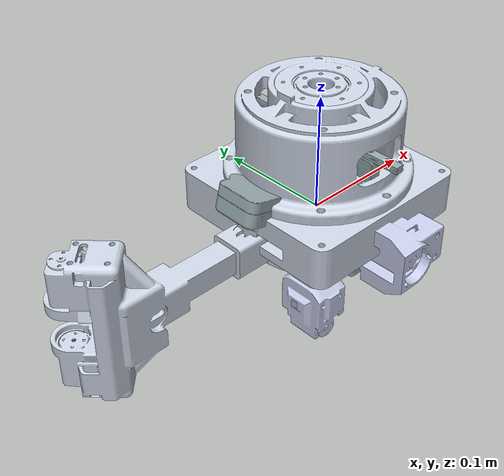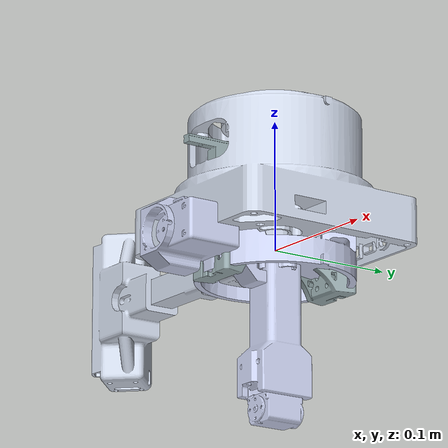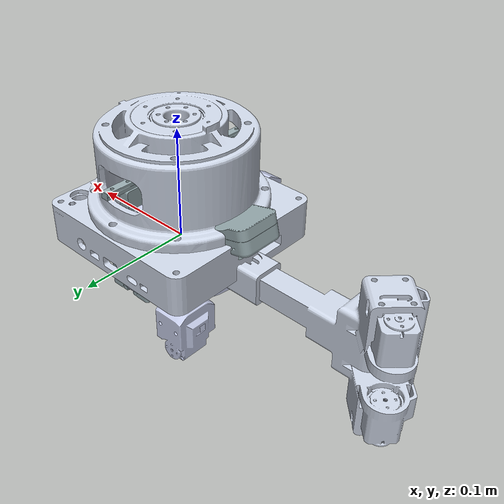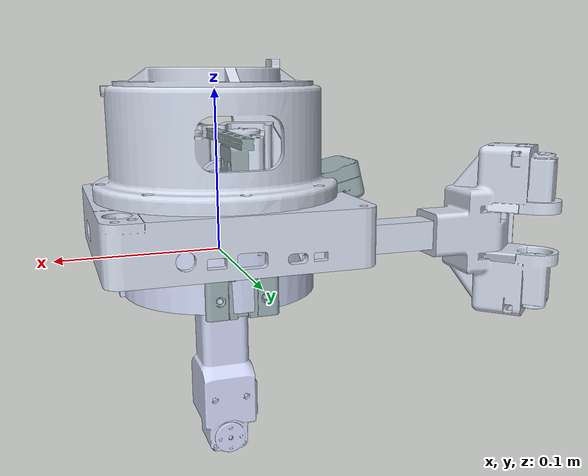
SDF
<?xml version="1.0"?>
<sdf version="1.8">
  <model name="alicia_d_fixed">

    <!-- base_link                                                    -->
    <!-- 当前架构: 由 URDF (Alicia_D_v5_6_gripper_100mm.urdf.xacro)   -->
    <!--          内的 world→base_link fixed joint 锚定到世界          -->
    <link name="base_link">
      <inertial>
        <pose>0.00082623 0.00797844 0.04576751 0 0 0</pose>
        <mass>0.73396142</mass>
        <inertia>
          <ixx>0.001384103</ixx><ixy>0.000056720</ixy><ixz>0.000000514</ixz>
          <iyy>0.001736172</iyy><iyz>-0.000014865</iyz>
          <izz>0.002746677</izz>
        </inertia>
      </inertial>
      <visual name="visual">
        <geometry>
          <mesh>
            <uri>model://alicia_d_descriptions/meshes/Alicia_D_v5_6/gripper_100mm/base_link.STL</uri>
          </mesh>
        </geometry>
        <material>
          <ambient>0.808 0.843 0.906 1</ambient>
          <diffuse>0.808 0.843 0.906 1</diffuse>
        </material>
      </visual>
      <collision name="collision">
        <geometry>
          <mesh>
            <uri>model://alicia_d_descriptions/meshes/Alicia_D_v5_6/gripper_100mm/base_link.STL</uri>
          </mesh>
        </geometry>
      </collision>
    </link>

    <!-- Link1                                                        -->
    <link name="Link1">
      <inertial>
        <pose>-0.00010985 -0.00001290 0.00303813 0 0 0</pose>
        <mass>0.19523345</mass>
        <inertia>
          <ixx>0.000258425</ixx><ixy>0.000000836</ixy><ixz>0.000002551</ixz>
          <iyy>0.000149308</iyy><iyz>-0.000001111</iyz>
          <izz>0.000339717</izz>
        </inertia>
      </inertial>
      <visual name="visual">
        <geometry>
          <mesh>
            <uri>model://alicia_d_descriptions/meshes/Alicia_D_v5_6/gripper_100mm/Link1.STL</uri>
          </mesh>
        </geometry>
        <material>
          <ambient>0.796 0.824 0.937 1</ambient>
          <diffuse>0.796 0.824 0.937 1</diffuse>
        </material>
      </visual>
      <collision name="collision">
        <geometry>
          <mesh>
            <uri>model://alicia_d_descriptions/meshes/Alicia_D_v5_6/gripper_100mm/Link1.STL</uri>
          </mesh>
        </geometry>
      </collision>
    </link>

    <joint name="Joint1" type="revolute">
      <pose relative_to="base_link">0 0 0.1295 0 -0.03978184 0</pose>
      <parent>base_link</parent>
      <child>Link1</child>
      <axis>
        <xyz>-0.03977135 0 0.99920881</xyz>
        <limit>
          <lower>-2.749</lower>
          <upper>2.749</upper>
          <effort>5</effort>
          <velocity>12</velocity>
        </limit>
        <dynamics>
          <damping>0.5</damping>
          <friction>0.1</friction>
        </dynamics>
      </axis>
    </joint>

    <!-- Link2                                                        -->
    <link name="Link2">
      <inertial>
        <pose>0.15058870 0.00100783 0.00056760 0 0 0</pose>
        <mass>0.20703369</mass>
        <inertia>
          <ixx>0.000128136</ixx><ixy>0.000000119</ixy><ixz>0.000001667</ixz>
          <iyy>0.000205708</iyy><iyz>-0.000000350</iyz>
          <izz>0.000122721</izz>
        </inertia>
      </inertial>
      <visual name="visual">
        <geometry>
          <mesh>
            <uri>model://alicia_d_descriptions/meshes/Alicia_D_v5_6/gripper_100mm/Link2.STL</uri>
          </mesh>
        </geometry>
        <material>
          <ambient>0.808 0.843 0.906 1</ambient>
          <diffuse>0.808 0.843 0.906 1</diffuse>
        </material>
      </visual>
      <collision name="collision">
        <geometry>
          <mesh>
            <uri>model://alicia_d_descriptions/meshes/Alicia_D_v5_6/gripper_100mm/Link2.STL</uri>
          </mesh>
        </geometry>
      </collision>
    </link>

    <joint name="Joint2" type="revolute">
      <pose relative_to="Link1">0.00170500 0 0.04283608 1.5707963 -1.5707963 0</pose>
      <parent>Link1</parent>
      <child>Link2</child>
      <axis>
        <xyz>0 0 -1</xyz>
        <limit>
          <lower>-1.57</lower>
          <upper>1.57</upper>
          <effort>5</effort>
          <velocity>12</velocity>
        </limit>
        <dynamics><damping>0.5</damping><friction>0.1</friction></dynamics>
      </axis>
    </joint>

    <!-- Link3                                                        -->
    <link name="Link3">
      <inertial>
        <pose>-0.00248144 -0.05578632 -0.00026972 0 0 0</pose>
        <mass>0.08455756</mass>
        <inertia>
          <ixx>0.0000761918</ixx><ixy>-0.00000226499</ixy><ixz>-0.000000382300</ixz>
          <iyy>0.0000287941</iyy><iyz>-0.00000538445</iyz>
          <izz>0.0000804370</izz>
        </inertia>
      </inertial>
      <visual name="visual">
        <geometry>
          <mesh>
            <uri>model://alicia_d_descriptions/meshes/Alicia_D_v5_6/gripper_100mm/Link3.STL</uri>
          </mesh>
        </geometry>
        <material>
          <ambient>0.792 0.820 0.933 1</ambient>
          <diffuse>0.792 0.820 0.933 1</diffuse>
        </material>
      </visual>
      <collision name="collision">
        <geometry>
          <mesh>
            <uri>model://alicia_d_descriptions/meshes/Alicia_D_v5_6/gripper_100mm/Link3.STL</uri>
          </mesh>
        </geometry>
      </collision>
    </link>

    <joint name="Joint3" type="revolute">
      <pose relative_to="Link2">0.22367130 0.02269161 -0.00005000 0 0 -2.35619449</pose>
      <parent>Link2</parent>
      <child>Link3</child>
      <axis>
        <xyz>0 0 -1</xyz>
        <limit>
          <lower>-0.78</lower>
          <upper>3.14159</upper>
          <effort>5</effort>
          <velocity>12</velocity>
        </limit>
        <dynamics><damping>0.5</damping><friction>0.1</friction></dynamics>
      </axis>
    </joint>

    <!-- Link4                                                        -->
    <link name="Link4">
      <inertial>
        <pose>0.00029837 -0.00060137 0.06597404 0 0 0</pose>
        <mass>0.06536959</mass>
        <inertia>
          <ixx>0.0000703004</ixx><ixy>-0.00000000968</ixy><ixz>-0.000000750131</ixz>
          <iyy>0.0000687470</iyy><iyz>0.0000000445271</iyz>
          <izz>0.0000168226</izz>
        </inertia>
      </inertial>
      <visual name="visual">
        <geometry>
          <mesh>
            <uri>model://alicia_d_descriptions/meshes/Alicia_D_v5_6/gripper_100mm/Link4.STL</uri>
          </mesh>
        </geometry>
        <material>
          <ambient>0.792 0.820 0.933 1</ambient>
          <diffuse>0.792 0.820 0.933 1</diffuse>
        </material>
      </visual>
      <collision name="collision">
        <geometry>
          <mesh>
            <uri>model://alicia_d_descriptions/meshes/Alicia_D_v5_6/gripper_100mm/Link4.STL</uri>
          </mesh>
        </geometry>
      </collision>
    </link>

    <joint name="Joint4" type="revolute">
      <pose relative_to="Link3">0.00211000 -0.09900000 -0.00020000 1.5707963 0 0</pose>
      <parent>Link3</parent>
      <child>Link4</child>
      <axis>
        <xyz>0 0 -1</xyz>
        <limit>
          <lower>-2.7925</lower>
          <upper>2.7925</upper>
          <effort>5</effort>
          <velocity>12</velocity>
        </limit>
        <dynamics><damping>0.5</damping><friction>0.1</friction></dynamics>
      </axis>
    </joint>

    <!-- Link5                                                        -->
    <link name="Link5">
      <inertial>
        <pose>-0.01136842 0.03086875 -0.00087045 0 0 0</pose>
        <mass>0.05076390</mass>
        <inertia>
          <ixx>0.0000187701</ixx><ixy>0.00000201099</ixy><ixz>-0.0000000515226</ixz>
          <iyy>0.0000251021</iyy><iyz>-0.0000000422413</iyz>
          <izz>0.0000172572</izz>
        </inertia>
      </inertial>
      <visual name="visual">
        <geometry>
          <mesh>
            <uri>model://alicia_d_descriptions/meshes/Alicia_D_v5_6/gripper_100mm/Link5.STL</uri>
          </mesh>
        </geometry>
        <material>
          <ambient>0.792 0.820 0.933 1</ambient>
          <diffuse>0.792 0.820 0.933 1</diffuse>
        </material>
      </visual>
      <collision name="collision">
        <geometry>
          <mesh>
            <uri>model://alicia_d_descriptions/meshes/Alicia_D_v5_6/gripper_100mm/Link5.STL</uri>
          </mesh>
        </geometry>
      </collision>
    </link>

    <joint name="Joint5" type="revolute">
      <pose relative_to="Link4">0 -0.00050000 0.12235000 1.5707963 0 0</pose>
      <parent>Link4</parent>
      <child>Link5</child>
      <axis>
        <xyz>0 0 1</xyz>
        <limit>
          <lower>-1.57</lower>
          <upper>1.57</upper>
          <effort>5</effort>
          <velocity>12</velocity>
        </limit>
        <dynamics><damping>0.5</damping><friction>0.1</friction></dynamics>
      </axis>
    </joint>

    <!-- Link6                                                        -->
    <link name="Link6">
      <inertial>
        <pose>-0.02876443 -0.00016362 0.03414807 0 0 0</pose>
        <mass>0.12343629</mass>
        <inertia>
          <ixx>0.0000816840</ixx><ixy>0.0000000106380</ixy><ixz>-0.00000360107</ixz>
          <iyy>0.0000341799</iyy><iyz>0.0000000208540</iyz>
          <izz>0.0000879930</izz>
        </inertia>
      </inertial>
      <visual name="visual">
        <geometry>
          <mesh>
            <uri>model://alicia_d_descriptions/meshes/Alicia_D_v5_6/gripper_100mm/Link6.STL</uri>
          </mesh>
        </geometry>
        <material>
          <ambient>0.592 0.667 0.682 1</ambient>
          <diffuse>0.592 0.667 0.682 1</diffuse>
        </material>
      </visual>
      <collision name="collision">
        <geometry>
          <mesh>
            <uri>model://alicia_d_descriptions/meshes/Alicia_D_v5_6/gripper_100mm/Link6.STL</uri>
          </mesh>
        </geometry>
      </collision>
    </link>

    <joint name="Joint6" type="revolute">
      <pose relative_to="Link5">-0.00385000 0.05750000 -0.00100000 -1.5707963 0 0</pose>
      <parent>Link5</parent>
      <child>Link6</child>
      <axis>
        <xyz>0 0 -1</xyz>
        <limit>
          <lower>-3.14</lower>
          <upper>3.14</upper>
          <effort>5</effort>
          <velocity>12</velocity>
        </limit>
        <dynamics><damping>0.3</damping><friction>0.05</friction></dynamics>
      </axis>
    </joint>

    <!-- left_gripper (主动爪，受 Gripper joint 控制)                  -->
    <link name="left_gripper">
      <inertial>
        <pose>-0.00000003 -0.04340876 0.01065967 0 0 0</pose>
        <mass>0.02564611</mass>
        <inertia>
          <ixx>0.00000646830</ixx><ixy>0.0000000000240351</ixy><ixz>0.00000000000469832</ixz>
          <iyy>0.00000513429</iyy><iyz>0.00000126432</iyz>
          <izz>0.00000803606</izz>
        </inertia>
      </inertial>
      <visual name="visual">
        <geometry>
          <mesh>
            <uri>model://alicia_d_descriptions/meshes/Alicia_D_v5_6/gripper_100mm/left_gripper.STL</uri>
          </mesh>
        </geometry>
        <material>
          <ambient>0.592 0.667 0.682 1</ambient>
          <diffuse>0.592 0.667 0.682 1</diffuse>
        </material>
      </visual>
      <collision name="collision">
        <geometry>
          <mesh>
            <uri>model://alicia_d_descriptions/meshes/Alicia_D_v5_6/gripper_100mm/left_gripper.STL</uri>
          </mesh>
        </geometry>
      </collision>
    </link>

    <!-- Gripper: prismatic, 0=open, 0.05=closed -->
    <joint name="Gripper" type="prismatic">
      <pose relative_to="Link6">-0.00020000 -0.05049785 0.13097966 1.5707963 0 0</pose>
      <parent>Link6</parent>
      <child>left_gripper</child>
      <axis>
        <xyz>0 0 -1</xyz>
        <limit>
          <lower>0</lower>
          <upper>0.05</upper>
          <effort>5</effort>
          <velocity>12</velocity>
        </limit>
        <dynamics><damping>0.1</damping><friction>0.05</friction></dynamics>
      </axis>
    </joint>

    <!-- right_gripper (随动爪，mimic Gripper，方向相反)               -->
    <link name="right_gripper">
      <inertial>
        <pose>0.00000003 0.04340876 0.01065967 0 0 0</pose>
        <mass>0.02564611</mass>
        <inertia>
          <ixx>0.00000646830</ixx><ixy>0.0000000000238640</ixy><ixz>-0.00000000000457155</ixz>
          <iyy>0.00000513429</iyy><iyz>-0.00000126432</iyz>
          <izz>0.00000803606</izz>
        </inertia>
      </inertial>
      <visual name="visual">
        <geometry>
          <mesh>
            <uri>model://alicia_d_descriptions/meshes/Alicia_D_v5_6/gripper_100mm/right_gripper.STL</uri>
          </mesh>
        </geometry>
        <material>
          <ambient>0.592 0.667 0.682 1</ambient>
          <diffuse>0.592 0.667 0.682 1</diffuse>
        </material>
      </visual>
      <collision name="collision">
        <geometry>
          <mesh>
            <uri>model://alicia_d_descriptions/meshes/Alicia_D_v5_6/gripper_100mm/right_gripper.STL</uri>
          </mesh>
        </geometry>
      </collision>
    </link>

    <!-- right_finger: mimic Gripper (multiplier=-1) -->
    <joint name="right_finger" type="prismatic">
      <pose relative_to="Link6">-0.0002 0.050502 0.13098 -1.5708 0 0</pose>
      <parent>Link6</parent>
      <child>right_gripper</child>
      <axis>
        <xyz>0 0 1</xyz>
        <limit>
          <lower>-0.05</lower>
          <upper>0</upper>
          <effort>5</effort>
          <velocity>12</velocity>
        </limit>
        <dynamics><damping>0.1</damping><friction>0.05</friction></dynamics>
        <!-- Mimic Gripper joint: right_finger = -1.0 * Gripper -->
        <mimic joint="Gripper">
          <multiplier>-1.0</multiplier>
          <offset>0</offset>
        </mimic>
      </axis>
    </joint>

    <!-- gripper_center (末端执行器虚拟链接，MoveIt 规划目标点)        -->
    <link name="gripper_center">
      <visual name="visual">
        <geometry>
          <sphere><radius>0.005</radius></sphere>
        </geometry>
        <material>
          <ambient>0 1 0 1</ambient>
          <diffuse>0 1 0 1</diffuse>
        </material>
      </visual>
      <!-- gripper_center 无碰撞、无质量（虚拟参考点） -->
    </link>

    <joint name="finger" type="fixed">
      <pose relative_to="Link6">-0.0002 0 0.13048 0 0 0</pose>
      <parent>Link6</parent>
      <child>gripper_center</child>
    </joint>

  </model>
</sdf>
